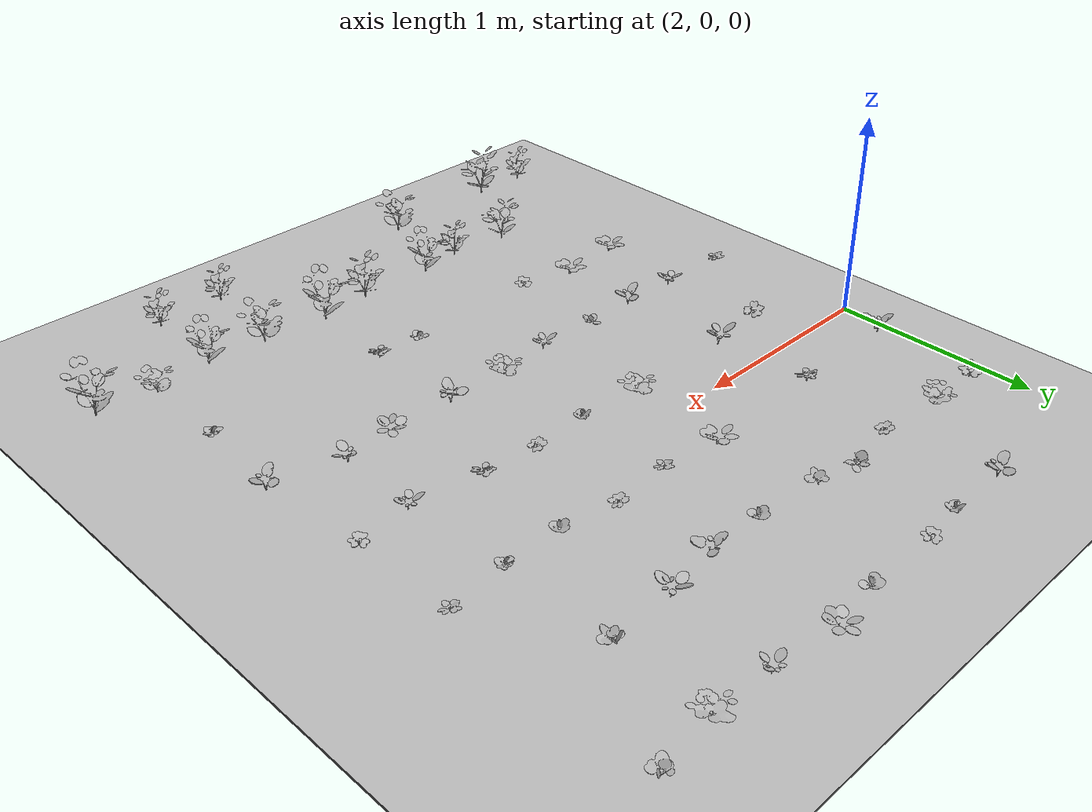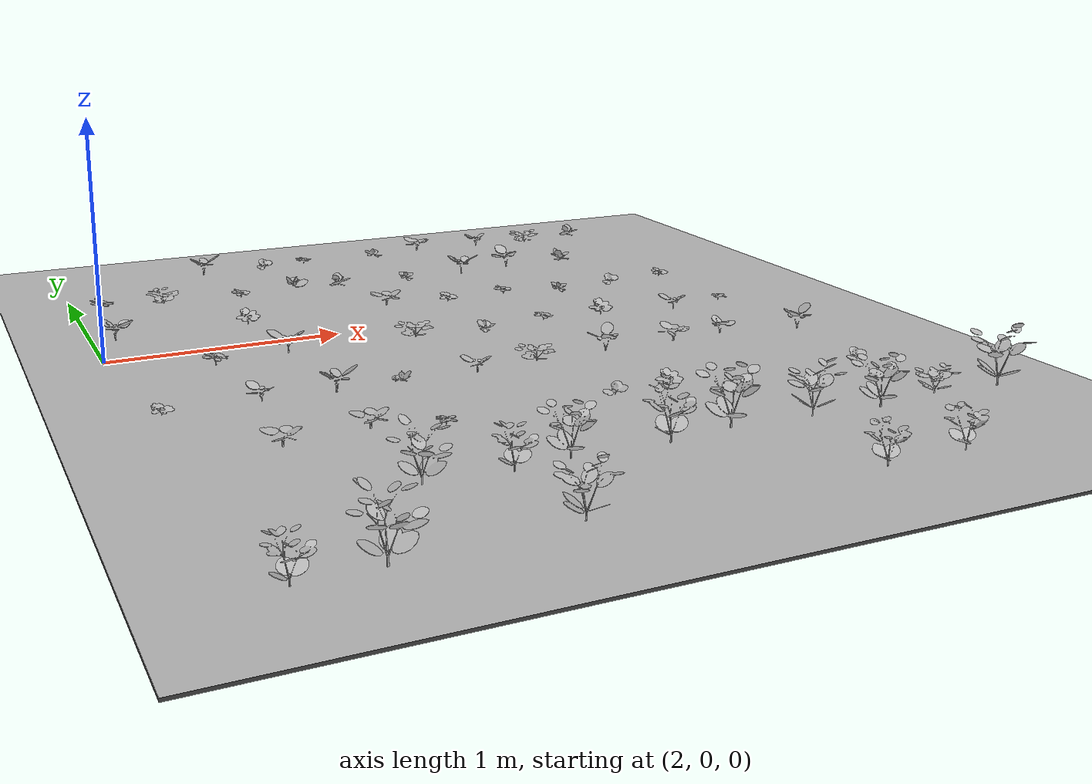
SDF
<sdf version="1.7">
 <world name="default">
  <model name="ground_plane">
   <static>1</static>
   <link name="link">
    <collision name="collision">
     <geometry><plane><normal>0 0 1</normal><size>100 100</size></plane></geometry>
     <surface>
      <contact><collide_bitmask>65535</collide_bitmask></contact>
      <friction><ode><mu>100</mu><mu2>50</mu2></ode></friction>
     </surface>
    </collision>
    <visual name="visual">
     <cast_shadows>0</cast_shadows>
     <geometry><plane><normal>0 0 1</normal><size>100 100</size></plane></geometry>
     <material>
      <ambient>0.2 0.2 0.2 1.0</ambient>
      <diffuse>0.2 0.2 0.2 1.0</diffuse>
      <specular>0.2 0.2 0.2 1.0</specular>
      <emissive>0.2 0.2 0.2 1.0</emissive>
     </material>
    </visual>
   </link>
  </model>
  <model name="ground">
   <pose>5 -0.5 0.01  3.141592654 0 0</pose>
   <static>true</static>
   <link name="body">
    <visual name="visual">
     <cast_shadows>0</cast_shadows>
     <geometry>
      <mesh><uri>file:///home/ifcosta/final_ws/src/cnn_line/worlds/models/ground.obj</uri></mesh>
     </geometry>
    </visual>
   </link>
  </model>
  <model name="plt_8">
   <pose>2.4 -1.24 0.0127 0.0 0.0 -0.70569</pose>
   <static>true</static>
   <link name="body">
    <visual name="visual">
     <geometry>
      <mesh><uri>file:///home/ifcosta/final_ws/src/cnn_line/worlds/models/plant2.obj</uri></mesh>
     </geometry>
    </visual>
   </link>
  </model>
  <model name="plt_9">
   <pose>2.73 -1.2 0.0151 0.0 0.0 -0.49936</pose>
   <static>true</static>
   <link name="body">
    <visual name="visual">
     <geometry>
      <mesh><uri>file:///home/ifcosta/final_ws/src/cnn_line/worlds/models/plant2.obj</uri></mesh>
     </geometry>
    </visual>
   </link>
  </model>
  <model name="plt_10">
   <pose>2.98 -1.27 0.0139 0.0 0.0 1.1967</pose>
   <static>true</static>
   <link name="body">
    <visual name="visual">
     <geometry>
      <mesh><uri>file:///home/ifcosta/final_ws/src/cnn_line/worlds/models/plant4.obj</uri></mesh>
     </geometry>
    </visual>
   </link>
  </model>
  <model name="plt_12">
   <pose>3.68 -1.24 0.0168 0.0 0.0 -0.79892</pose>
   <static>true</static>
   <link name="body">
    <visual name="visual">
     <geometry>
      <mesh><uri>file:///home/ifcosta/final_ws/src/cnn_line/worlds/models/plant6.obj</uri></mesh>
     </geometry>
    </visual>
   </link>
  </model>
  <model name="plt_13">
   <pose>3.91 -1.25 0.0149 0.0 0.0 -1.5614</pose>
   <static>true</static>
   <link name="body">
    <visual name="visual">
     <geometry>
      <mesh><uri>file:///home/ifcosta/final_ws/src/cnn_line/worlds/models/plant5.obj</uri></mesh>
     </geometry>
    </visual>
   </link>
  </model>
  <model name="plt_16">
   <pose>4.79 -1.26 0.0151 0.0 0.0 -0.31027</pose>
   <static>true</static>
   <link name="body">
    <visual name="visual">
     <geometry>
      <mesh><uri>file:///home/ifcosta/final_ws/src/cnn_line/worlds/models/plant6.obj</uri></mesh>
     </geometry>
    </visual>
   </link>
  </model>
  <model name="plt_41">
   <pose>2.08 -0.762 0.0162 0.0 0.0 -0.56848</pose>
   <static>true</static>
   <link name="body">
    <visual name="visual">
     <geometry>
      <mesh><uri>file:///home/ifcosta/final_ws/src/cnn_line/worlds/models/plant4.obj</uri></mesh>
     </geometry>
    </visual>
   </link>
  </model>
  <model name="plt_42">
   <pose>2.45 -0.762 0.0149 0.0 0.0 -1.3486</pose>
   <static>true</static>
   <link name="body">
    <visual name="visual">
     <geometry>
      <mesh><uri>file:///home/ifcosta/final_ws/src/cnn_line/worlds/models/plant1.obj</uri></mesh>
     </geometry>
    </visual>
   </link>
  </model>
  <model name="plt_43">
   <pose>2.74 -0.75 0.0141 0.0 0.0 -0.31021</pose>
   <static>true</static>
   <link name="body">
    <visual name="visual">
     <geometry>
      <mesh><uri>file:///home/ifcosta/final_ws/src/cnn_line/worlds/models/plant3.obj</uri></mesh>
     </geometry>
    </visual>
   </link>
  </model>
  <model name="plt_44">
   <pose>3.0 -0.77 0.0157 0.0 0.0 -1.9025</pose>
   <static>true</static>
   <link name="body">
    <visual name="visual">
     <geometry>
      <mesh><uri>file:///home/ifcosta/final_ws/src/cnn_line/worlds/models/plant6.obj</uri></mesh>
     </geometry>
    </visual>
   </link>
  </model>
  <model name="plt_45">
   <pose>3.32 -0.773 0.0137 0.0 0.0 -0.81954</pose>
   <static>true</static>
   <link name="body">
    <visual name="visual">
     <geometry>
      <mesh><uri>file:///home/ifcosta/final_ws/src/cnn_line/worlds/models/plant1.obj</uri></mesh>
     </geometry>
    </visual>
   </link>
  </model>
  <model name="plt_46">
   <pose>3.6 -0.74 0.0158 0.0 0.0 1.1076</pose>
   <static>true</static>
   <link name="body">
    <visual name="visual">
     <geometry>
      <mesh><uri>file:///home/ifcosta/final_ws/src/cnn_line/worlds/models/plant0.obj</uri></mesh>
     </geometry>
    </visual>
   </link>
  </model>
  <model name="plt_47">
   <pose>3.9 -0.72 0.0159 0.0 0.0 0.7081</pose>
   <static>true</static>
   <link name="body">
    <visual name="visual">
     <geometry>
      <mesh><uri>file:///home/ifcosta/final_ws/src/cnn_line/worlds/models/plant3.obj</uri></mesh>
     </geometry>
    </visual>
   </link>
  </model>
  <model name="plt_48">
   <pose>4.25 -0.738 0.0164 0.0 0.0 -1.6958</pose>
   <static>true</static>
   <link name="body">
    <visual name="visual">
     <geometry>
      <mesh><uri>file:///home/ifcosta/final_ws/src/cnn_line/worlds/models/plant2.obj</uri></mesh>
     </geometry>
    </visual>
   </link>
  </model>
  <model name="plt_49">
   <pose>4.5 -0.709 0.014 0.0 0.0 1.0418</pose>
   <static>true</static>
   <link name="body">
    <visual name="visual">
     <geometry>
      <mesh><uri>file:///home/ifcosta/final_ws/src/cnn_line/worlds/models/plant1.obj</uri></mesh>
     </geometry>
    </visual>
   </link>
  </model>
  <model name="plt_50">
   <pose>4.84 -0.764 0.0147 0.0 0.0 0.1015</pose>
   <static>true</static>
   <link name="body">
    <visual name="visual">
     <geometry>
      <mesh><uri>file:///home/ifcosta/final_ws/src/cnn_line/worlds/models/plant3.obj</uri></mesh>
     </geometry>
    </visual>
   </link>
  </model>
  <model name="plt_76">
   <pose>2.4 -0.26 0.0146 0.0 0.0 0.46877</pose>
   <static>true</static>
   <link name="body">
    <visual name="visual">
     <geometry>
      <mesh><uri>file:///home/ifcosta/final_ws/src/cnn_line/worlds/models/plant5.obj</uri></mesh>
     </geometry>
    </visual>
   </link>
  </model>
  <model name="plt_77">
   <pose>2.7 -0.24 0.0145 0.0 0.0 2.448</pose>
   <static>true</static>
   <link name="body">
    <visual name="visual">
     <geometry>
      <mesh><uri>file:///home/ifcosta/final_ws/src/cnn_line/worlds/models/plant3.obj</uri></mesh>
     </geometry>
    </visual>
   </link>
  </model>
  <model name="plt_79">
   <pose>3.28 -0.215 0.0128 0.0 0.0 1.2336</pose>
   <static>true</static>
   <link name="body">
    <visual name="visual">
     <geometry>
      <mesh><uri>file:///home/ifcosta/final_ws/src/cnn_line/worlds/models/plant0.obj</uri></mesh>
     </geometry>
    </visual>
   </link>
  </model>
  <model name="plt_80">
   <pose>3.59 -0.249 0.0123 0.0 0.0 0.52518</pose>
   <static>true</static>
   <link name="body">
    <visual name="visual">
     <geometry>
      <mesh><uri>file:///home/ifcosta/final_ws/src/cnn_line/worlds/models/plant6.obj</uri></mesh>
     </geometry>
    </visual>
   </link>
  </model>
  <model name="plt_81">
   <pose>3.89 -0.219 0.0166 0.0 0.0 0.21807</pose>
   <static>true</static>
   <link name="body">
    <visual name="visual">
     <geometry>
      <mesh><uri>file:///home/ifcosta/final_ws/src/cnn_line/worlds/models/plant4.obj</uri></mesh>
     </geometry>
    </visual>
   </link>
  </model>
  <model name="plt_82">
   <pose>4.17 -0.237 0.0134 0.0 0.0 -1.6252</pose>
   <static>true</static>
   <link name="body">
    <visual name="visual">
     <geometry>
      <mesh><uri>file:///home/ifcosta/final_ws/src/cnn_line/worlds/models/plant5.obj</uri></mesh>
     </geometry>
    </visual>
   </link>
  </model>
  <model name="plt_83">
   <pose>4.52 -0.29 0.014 0.0 0.0 -0.92954</pose>
   <static>true</static>
   <link name="body">
    <visual name="visual">
     <geometry>
      <mesh><uri>file:///home/ifcosta/final_ws/src/cnn_line/worlds/models/plant1.obj</uri></mesh>
     </geometry>
    </visual>
   </link>
  </model>
  <model name="plt_84">
   <pose>4.79 -0.254 0.0162 0.0 0.0 1.173</pose>
   <static>true</static>
   <link name="body">
    <visual name="visual">
     <geometry>
      <mesh><uri>file:///home/ifcosta/final_ws/src/cnn_line/worlds/models/plant4.obj</uri></mesh>
     </geometry>
    </visual>
   </link>
  </model>
  <model name="plt_109">
   <pose>2.11 0.266 0.0164 0.0 0.0 -1.059</pose>
   <static>true</static>
   <link name="body">
    <visual name="visual">
     <geometry>
      <mesh><uri>file:///home/ifcosta/final_ws/src/cnn_line/worlds/models/plant3.obj</uri></mesh>
     </geometry>
    </visual>
   </link>
  </model>
  <model name="plt_111">
   <pose>2.67 0.263 0.014 0.0 0.0 -1.3657</pose>
   <static>true</static>
   <link name="body">
    <visual name="visual">
     <geometry>
      <mesh><uri>file:///home/ifcosta/final_ws/src/cnn_line/worlds/models/plant5.obj</uri></mesh>
     </geometry>
    </visual>
   </link>
  </model>
  <model name="plt_113">
   <pose>3.34 0.288 0.0191 0.0 0.0 -0.50793</pose>
   <static>true</static>
   <link name="body">
    <visual name="visual">
     <geometry>
      <mesh><uri>file:///home/ifcosta/final_ws/src/cnn_line/worlds/models/plant2.obj</uri></mesh>
     </geometry>
    </visual>
   </link>
  </model>
  <model name="plt_114">
   <pose>3.62 0.248 0.0179 0.0 0.0 -0.81474</pose>
   <static>true</static>
   <link name="body">
    <visual name="visual">
     <geometry>
      <mesh><uri>file:///home/ifcosta/final_ws/src/cnn_line/worlds/models/plant4.obj</uri></mesh>
     </geometry>
    </visual>
   </link>
  </model>
  <model name="plt_115">
   <pose>3.92 0.274 0.0164 0.0 0.0 0.013294</pose>
   <static>true</static>
   <link name="body">
    <visual name="visual">
     <geometry>
      <mesh><uri>file:///home/ifcosta/final_ws/src/cnn_line/worlds/models/plant4.obj</uri></mesh>
     </geometry>
    </visual>
   </link>
  </model>
  <model name="plt_116">
   <pose>4.19 0.219 0.0137 0.0 0.0 1.1147</pose>
   <static>true</static>
   <link name="body">
    <visual name="visual">
     <geometry>
      <mesh><uri>file:///home/ifcosta/final_ws/src/cnn_line/worlds/models/plant6.obj</uri></mesh>
     </geometry>
    </visual>
   </link>
  </model>
  <model name="plt_117">
   <pose>4.48 0.23 0.0169 0.0 0.0 -0.16379</pose>
   <static>true</static>
   <link name="body">
    <visual name="visual">
     <geometry>
      <mesh><uri>file:///home/ifcosta/final_ws/src/cnn_line/worlds/models/plant6.obj</uri></mesh>
     </geometry>
    </visual>
   </link>
  </model>
  <model name="plt_118">
   <pose>4.78 0.264 0.0152 0.0 0.0 -0.68654</pose>
   <static>true</static>
   <link name="body">
    <visual name="visual">
     <geometry>
      <mesh><uri>file:///home/ifcosta/final_ws/src/cnn_line/worlds/models/plant4.obj</uri></mesh>
     </geometry>
    </visual>
   </link>
  </model>
  <model name="plt_143">
   <pose>2.12 0.762 0.0134 0.0 0.0 0.75645</pose>
   <static>true</static>
   <link name="body">
    <visual name="visual">
     <geometry>
      <mesh><uri>file:///home/ifcosta/final_ws/src/cnn_line/worlds/models/plant5.obj</uri></mesh>
     </geometry>
    </visual>
   </link>
  </model>
  <model name="plt_10143">
   <pose>2.12 -2.24 0.0134 0.0 0.0 -0.26045</pose>
   <static>true</static>
   <link name="body">
    <visual name="visual">
     <geometry>
      <mesh><uri>file:///home/ifcosta/final_ws/src/cnn_line/worlds/models/plant11.obj</uri></mesh>
     </geometry>
    </visual>
   </link>
  </model>
  <model name="plt_144">
   <pose>2.4 0.759 0.0156 0.0 0.0 0.037393</pose>
   <static>true</static>
   <link name="body">
    <visual name="visual">
     <geometry>
      <mesh><uri>file:///home/ifcosta/final_ws/src/cnn_line/worlds/models/plant0.obj</uri></mesh>
     </geometry>
    </visual>
   </link>
  </model>
  <model name="plt_10144">
   <pose>2.4 -2.24 0.0156 0.0 0.0 -0.76543</pose>
   <static>true</static>
   <link name="body">
    <visual name="visual">
     <geometry>
      <mesh><uri>file:///home/ifcosta/final_ws/src/cnn_line/worlds/models/plant13.obj</uri></mesh>
     </geometry>
    </visual>
   </link>
  </model>
  <model name="plt_145">
   <pose>2.76 0.735 0.0132 0.0 0.0 -0.12132</pose>
   <static>true</static>
   <link name="body">
    <visual name="visual">
     <geometry>
      <mesh><uri>file:///home/ifcosta/final_ws/src/cnn_line/worlds/models/plant4.obj</uri></mesh>
     </geometry>
    </visual>
   </link>
  </model>
  <model name="plt_146">
   <pose>3.04 0.797 0.0153 0.0 0.0 1.3661</pose>
   <static>true</static>
   <link name="body">
    <visual name="visual">
     <geometry>
      <mesh><uri>file:///home/ifcosta/final_ws/src/cnn_line/worlds/models/plant7.obj</uri></mesh>
     </geometry>
    </visual>
   </link>
  </model>
  <model name="plt_10146">
   <pose>3.04 -2.2 0.0153 0.0 0.0 1.4738</pose>
   <static>true</static>
   <link name="body">
    <visual name="visual">
     <geometry>
      <mesh><uri>file:///home/ifcosta/final_ws/src/cnn_line/worlds/models/plant12.obj</uri></mesh>
     </geometry>
    </visual>
   </link>
  </model>
  <model name="plt_147">
   <pose>3.25 0.748 0.0127 0.0 0.0 -0.38196</pose>
   <static>true</static>
   <link name="body">
    <visual name="visual">
     <geometry>
      <mesh><uri>file:///home/ifcosta/final_ws/src/cnn_line/worlds/models/plant7.obj</uri></mesh>
     </geometry>
    </visual>
   </link>
  </model>
  <model name="plt_148">
   <pose>3.59 0.714 0.0161 0.0 0.0 1.2294</pose>
   <static>true</static>
   <link name="body">
    <visual name="visual">
     <geometry>
      <mesh><uri>file:///home/ifcosta/final_ws/src/cnn_line/worlds/models/plant6.obj</uri></mesh>
     </geometry>
    </visual>
   </link>
  </model>
  <model name="plt_149">
   <pose>3.91 0.747 0.015 0.0 0.0 -0.81164</pose>
   <static>true</static>
   <link name="body">
    <visual name="visual">
     <geometry>
      <mesh><uri>file:///home/ifcosta/final_ws/src/cnn_line/worlds/models/plant3.obj</uri></mesh>
     </geometry>
    </visual>
   </link>
  </model>
  <model name="plt_150">
   <pose>4.14 0.767 0.0139 0.0 0.0 1.4157</pose>
   <static>true</static>
   <link name="body">
    <visual name="visual">
     <geometry>
      <mesh><uri>file:///home/ifcosta/final_ws/src/cnn_line/worlds/models/plant3.obj</uri></mesh>
     </geometry>
    </visual>
   </link>
  </model>
  <model name="plt_10150">
   <pose>4.14 -2.23 0.0139 0.0 0.0 -0.17258</pose>
   <static>true</static>
   <link name="body">
    <visual name="visual">
     <geometry>
      <mesh><uri>file:///home/ifcosta/final_ws/src/cnn_line/worlds/models/plant11.obj</uri></mesh>
     </geometry>
    </visual>
   </link>
  </model>
  <model name="plt_151">
   <pose>4.48 0.777 0.0131 0.0 0.0 0.13559</pose>
   <static>true</static>
   <link name="body">
    <visual name="visual">
     <geometry>
      <mesh><uri>file:///home/ifcosta/final_ws/src/cnn_line/worlds/models/plant7.obj</uri></mesh>
     </geometry>
    </visual>
   </link>
  </model>
  <model name="plt_10151">
   <pose>4.48 -2.22 0.0131 0.0 0.0 -0.0070256</pose>
   <static>true</static>
   <link name="body">
    <visual name="visual">
     <geometry>
      <mesh><uri>file:///home/ifcosta/final_ws/src/cnn_line/worlds/models/plant11.obj</uri></mesh>
     </geometry>
    </visual>
   </link>
  </model>
  <model name="plt_179">
   <pose>2.7 1.26 0.0136 0.0 0.0 -0.31067</pose>
   <static>true</static>
   <link name="body">
    <visual name="visual">
     <geometry>
      <mesh><uri>file:///home/ifcosta/final_ws/src/cnn_line/worlds/models/plant3.obj</uri></mesh>
     </geometry>
    </visual>
   </link>
  </model>
  <model name="plt_10179">
   <pose>2.7 -1.74 0.0136 0.0 0.0 -1.1282</pose>
   <static>true</static>
   <link name="body">
    <visual name="visual">
     <geometry>
      <mesh><uri>file:///home/ifcosta/final_ws/src/cnn_line/worlds/models/plant12.obj</uri></mesh>
     </geometry>
    </visual>
   </link>
  </model>
  <model name="plt_180">
   <pose>3.01 1.23 0.0169 0.0 0.0 0.051008</pose>
   <static>true</static>
   <link name="body">
    <visual name="visual">
     <geometry>
      <mesh><uri>file:///home/ifcosta/final_ws/src/cnn_line/worlds/models/plant6.obj</uri></mesh>
     </geometry>
    </visual>
   </link>
  </model>
  <model name="plt_10180">
   <pose>3.01 -1.77 0.0169 0.0 0.0 -0.4292</pose>
   <static>true</static>
   <link name="body">
    <visual name="visual">
     <geometry>
      <mesh><uri>file:///home/ifcosta/final_ws/src/cnn_line/worlds/models/plant11.obj</uri></mesh>
     </geometry>
    </visual>
   </link>
  </model>
  <model name="plt_181">
   <pose>3.23 1.26 0.0144 0.0 0.0 0.7665</pose>
   <static>true</static>
   <link name="body">
    <visual name="visual">
     <geometry>
      <mesh><uri>file:///home/ifcosta/final_ws/src/cnn_line/worlds/models/plant4.obj</uri></mesh>
     </geometry>
    </visual>
   </link>
  </model>
  <model name="plt_10181">
   <pose>3.23 -1.74 0.0144 0.0 0.0 0.82207</pose>
   <static>true</static>
   <link name="body">
    <visual name="visual">
     <geometry>
      <mesh><uri>file:///home/ifcosta/final_ws/src/cnn_line/worlds/models/plant12.obj</uri></mesh>
     </geometry>
    </visual>
   </link>
  </model>
  <model name="plt_182">
   <pose>3.61 1.25 0.0136 0.0 0.0 1.7887</pose>
   <static>true</static>
   <link name="body">
    <visual name="visual">
     <geometry>
      <mesh><uri>file:///home/ifcosta/final_ws/src/cnn_line/worlds/models/plant6.obj</uri></mesh>
     </geometry>
    </visual>
   </link>
  </model>
  <model name="plt_10182">
   <pose>3.61 -1.75 0.0136 0.0 0.0 -0.28432</pose>
   <static>true</static>
   <link name="body">
    <visual name="visual">
     <geometry>
      <mesh><uri>file:///home/ifcosta/final_ws/src/cnn_line/worlds/models/plant12.obj</uri></mesh>
     </geometry>
    </visual>
   </link>
  </model>
  <model name="plt_183">
   <pose>3.88 1.29 0.0134 0.0 0.0 -1.2419</pose>
   <static>true</static>
   <link name="body">
    <visual name="visual">
     <geometry>
      <mesh><uri>file:///home/ifcosta/final_ws/src/cnn_line/worlds/models/plant2.obj</uri></mesh>
     </geometry>
    </visual>
   </link>
  </model>
  <model name="plt_10183">
   <pose>3.88 -1.71 0.0134 0.0 0.0 0.73864</pose>
   <static>true</static>
   <link name="body">
    <visual name="visual">
     <geometry>
      <mesh><uri>file:///home/ifcosta/final_ws/src/cnn_line/worlds/models/plant13.obj</uri></mesh>
     </geometry>
    </visual>
   </link>
  </model>
  <model name="plt_184">
   <pose>4.21 1.26 0.0164 0.0 0.0 -0.35242</pose>
   <static>true</static>
   <link name="body">
    <visual name="visual">
     <geometry>
      <mesh><uri>file:///home/ifcosta/final_ws/src/cnn_line/worlds/models/plant1.obj</uri></mesh>
     </geometry>
    </visual>
   </link>
  </model>
  <model name="plt_10184">
   <pose>4.21 -1.74 0.0164 0.0 0.0 1.7158</pose>
   <static>true</static>
   <link name="body">
    <visual name="visual">
     <geometry>
      <mesh><uri>file:///home/ifcosta/final_ws/src/cnn_line/worlds/models/plant12.obj</uri></mesh>
     </geometry>
    </visual>
   </link>
  </model>
  <model name="plt_185">
   <pose>4.5 1.24 0.0145 0.0 0.0 1.3589</pose>
   <static>true</static>
   <link name="body">
    <visual name="visual">
     <geometry>
      <mesh><uri>file:///home/ifcosta/final_ws/src/cnn_line/worlds/models/plant0.obj</uri></mesh>
     </geometry>
    </visual>
   </link>
  </model>
  <model name="plt_10185">
   <pose>4.5 -1.76 0.0145 0.0 0.0 0.84539</pose>
   <static>true</static>
   <link name="body">
    <visual name="visual">
     <geometry>
      <mesh><uri>file:///home/ifcosta/final_ws/src/cnn_line/worlds/models/plant12.obj</uri></mesh>
     </geometry>
    </visual>
   </link>
  </model>
  <model name="plt_186">
   <pose>4.79 1.28 0.0155 0.0 0.0 -0.61912</pose>
   <static>true</static>
   <link name="body">
    <visual name="visual">
     <geometry>
      <mesh><uri>file:///home/ifcosta/final_ws/src/cnn_line/worlds/models/plant7.obj</uri></mesh>
     </geometry>
    </visual>
   </link>
  </model>
  <model name="plt_10186">
   <pose>4.79 -1.72 0.0155 0.0 0.0 1.5413</pose>
   <static>true</static>
   <link name="body">
    <visual name="visual">
     <geometry>
      <mesh><uri>file:///home/ifcosta/final_ws/src/cnn_line/worlds/models/plant10.obj</uri></mesh>
     </geometry>
    </visual>
   </link>
  </model>
  <model name="plt_10187">
   <pose>5.07 -1.75 0.0149 0.0 0.0 1.2093</pose>
   <static>true</static>
   <link name="body">
    <visual name="visual">
     <geometry>
      <mesh><uri>file:///home/ifcosta/final_ws/src/cnn_line/worlds/models/plant13.obj</uri></mesh>
     </geometry>
    </visual>
   </link>
  </model>
 </world>
</sdf>
